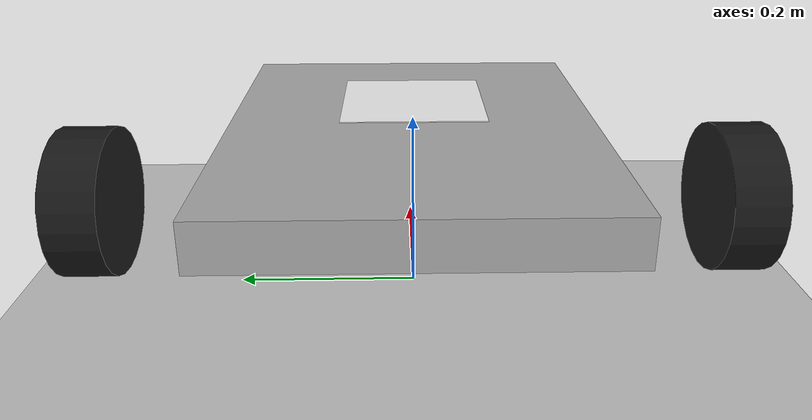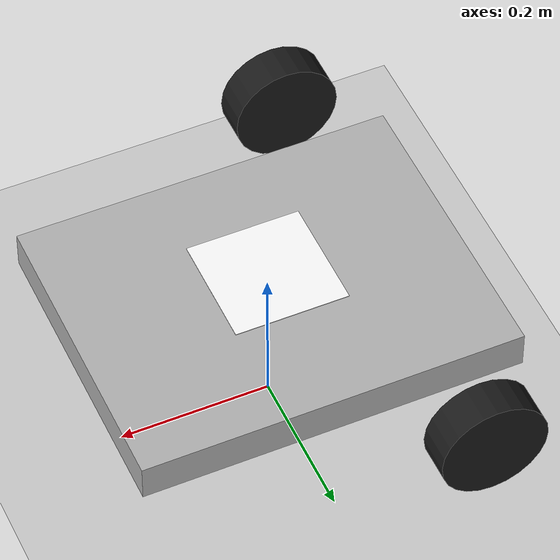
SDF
<?xml version="1.0" ?>
<sdf version="1.9">
  <world name="simple_robot_world">
    <physics name="1ms" type="ignored">
      <max_step_size>0.001</max_step_size>
      <real_time_factor>1.0</real_time_factor>
    </physics>

    <!-- Standard plugins -->
    <plugin filename="gz-sim-physics-system" name="gz::sim::systems::Physics"></plugin>
    <plugin filename="gz-sim-sensors-system" name="gz::sim::systems::Sensors">
      <render_engine>ogre2</render_engine>
    </plugin>
    <plugin filename="gz-sim-user-commands-system" name="gz::sim::systems::UserCommands"></plugin>
    <plugin filename="gz-sim-scene-broadcaster-system" name="gz::sim::systems::SceneBroadcaster"></plugin>

    <!-- Scene configuration -->
    <scene>
      <ambient>1.0 1.0 1.0</ambient>
      <background>0.8 0.8 0.8</background>
    </scene>

    <!-- Light -->
    <light type="directional" name="sun">
      <cast_shadows>true</cast_shadows>
      <pose>0 0 10 0 0 0</pose>
      <diffuse>0.8 0.8 0.8 1</diffuse>
      <specular>0.8 0.8 0.8 1</specular>
      <direction>-0.5 0.1 -0.9</direction>
    </light>

    <!-- Ground plane -->
    <model name="ground_plane">
      <static>true</static>
      <link name="link">
        <collision name="collision">
          <geometry>
            <plane>
              <normal>0 0 1</normal>
              <size>100 100</size>
            </plane>
          </geometry>
        </collision>
        <visual name="visual">
          <geometry>
            <plane>
              <normal>0 0 1</normal>
              <size>100 100</size>
            </plane>
          </geometry>
          <material>
            <ambient>0.8 0.8 0.8 1</ambient>
            <diffuse>0.8 0.8 0.8 1</diffuse>
            <specular>0.8 0.8 0.8 1</specular>
          </material>
        </visual>
      </link>
    </model>

    <!-- Include our robot with ArUco marker -->
    <include>
      <uri>model://simple_robot_with_aruco</uri>
      <name>robot_with_aruco</name>
      <pose>0 0 0.1 0 0 0</pose>
    </include>

    <!-- Keyboard controls for driving the robot -->
    <!-- Left arrow key -->
    <plugin filename="gz-sim-triggered-publisher-system"
            name="gz::sim::systems::TriggeredPublisher">
      <input type="gz.msgs.Int32" topic="/keyboard/keypress">
        <match field="data">16777234</match>
      </input>
      <output type="gz.msgs.Twist" topic="/cmd_vel">
        linear: {x: 0.0}, angular: {z: 0.5}
      </output>
    </plugin>

    <!-- Up arrow key (forward) -->
    <plugin filename="gz-sim-triggered-publisher-system"
            name="gz::sim::systems::TriggeredPublisher">
      <input type="gz.msgs.Int32" topic="/keyboard/keypress">
        <match field="data">16777235</match>
      </input>
      <output type="gz.msgs.Twist" topic="/cmd_vel">
        linear: {x: 0.5}, angular: {z: 0.0}
      </output>
    </plugin>

    <!-- Right arrow key -->
    <plugin filename="gz-sim-triggered-publisher-system"
            name="gz::sim::systems::TriggeredPublisher">
      <input type="gz.msgs.Int32" topic="/keyboard/keypress">
        <match field="data">16777236</match>
      </input>
      <output type="gz.msgs.Twist" topic="/cmd_vel">
        linear: {x: 0.0}, angular: {z: -0.5}
      </output>
    </plugin>

    <!-- Down arrow key (backward) -->
    <plugin filename="gz-sim-triggered-publisher-system"
            name="gz::sim::systems::TriggeredPublisher">
      <input type="gz.msgs.Int32" topic="/keyboard/keypress">
        <match field="data">16777237</match>
      </input>
      <output type="gz.msgs.Twist" topic="/cmd_vel">
        linear: {x: -0.5}, angular: {z: 0.0}
      </output>
    </plugin>
  </world>
</sdf>

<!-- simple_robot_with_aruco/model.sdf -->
<sdf version="1.9">
  <model name="simple_robot_with_aruco">
    <link name='chassis'>
      <pose>0 0 0.07 0 0 0</pose>  <!-- Lowered height -->
      <inertial>
        <mass>5.0</mass>  <!-- Increased mass for stability -->
        <inertia>
          <ixx>0.2</ixx>
          <ixy>0</ixy>
          <ixz>0</ixz>
          <iyy>0.25</iyy>
          <iyz>0</iyz>
          <izz>0.4</izz>
        </inertia>
      </inertial>
      <visual name='visual'>
        <geometry>
          <box>
            <size>0.5 0.4 0.05</size>  <!-- Thinner chassis -->
          </box>
        </geometry>
        <material>
          <ambient>0.7 0.7 0.7 1</ambient>
          <diffuse>0.7 0.7 0.7 1</diffuse>
          <specular>0.7 0.7 0.7 1</specular>
        </material>
      </visual>
      <collision name='collision'>
        <geometry>
          <box>
            <size>0.5 0.4 0.05</size>
          </box>
        </geometry>
      </collision>
    </link>

    <!-- Left wheel -->
    <link name='left_wheel'>
      <pose relative_to="chassis">-0.15 0.3 0 -1.5707 0 0</pose>  <!-- Wider wheelbase -->
      <inertial>
        <mass>1.0</mass>
        <inertia>
          <ixx>0.043333</ixx>
          <ixy>0</ixy>
          <ixz>0</ixz>
          <iyy>0.043333</iyy>
          <iyz>0</iyz>
          <izz>0.08</izz>
        </inertia>
      </inertial>
      <visual name='visual'>
        <geometry>
          <cylinder>
            <radius>0.07</radius>  <!-- Smaller wheels -->
            <length>0.05</length>
          </cylinder>
        </geometry>
        <material>
          <ambient>0.1 0.1 0.1 1</ambient>
          <diffuse>0.1 0.1 0.1 1</diffuse>
          <specular>0.1 0.1 0.1 1</specular>
        </material>
      </visual>
      <collision name='collision'>
        <geometry>
          <cylinder>
            <radius>0.07</radius>
            <length>0.05</length>
          </cylinder>
        </geometry>
      </collision>
    </link>

    <!-- Right wheel -->
    <link name='right_wheel'>
      <pose relative_to="chassis">-0.15 -0.3 0 -1.5707 0 0</pose>  <!-- Wider wheelbase -->
      <inertial>
        <mass>1.0</mass>
        <inertia>
          <ixx>0.043333</ixx>
          <ixy>0</ixy>
          <ixz>0</ixz>
          <iyy>0.043333</iyy>
          <iyz>0</iyz>
          <izz>0.08</izz>
        </inertia>
      </inertial>
      <visual name='visual'>
        <geometry>
          <cylinder>
            <radius>0.07</radius>
            <length>0.05</length>
          </cylinder>
        </geometry>
        <material>
          <ambient>0.1 0.1 0.1 1</ambient>
          <diffuse>0.1 0.1 0.1 1</diffuse>
          <specular>0.1 0.1 0.1 1</specular>
        </material>
      </visual>
      <collision name='collision'>
        <geometry>
          <cylinder>
            <radius>0.07</radius>
            <length>0.05</length>
          </cylinder>
        </geometry>
      </collision>
    </link>

    <!-- ArUco marker link -->
    <link name="aruco_marker_link">
      <pose relative_to="chassis">0 0 0.05 0 0 0</pose>
      <inertial>
        <mass>0.01</mass>
        <inertia>
          <ixx>0.000001</ixx>
          <ixy>0</ixy>
          <ixz>0</ixz>
          <iyy>0.000001</iyy>
          <iyz>0</iyz>
          <izz>0.000001</izz>
        </inertia>
      </inertial>
      <visual name="visual">
        <geometry>
          <box>
            <size>0.15 0.15 0.001</size>
          </box>
        </geometry>
        <material>
          <ambient>1.0 1.0 1.0 1</ambient>
          <diffuse>1.0 1.0 1.0 1</diffuse>
          <specular>0.5 0.5 0.5 1</specular>
          <pbr>
            <metal>
              <albedo_map>materials/textures/aruco_marker.png</albedo_map>
            </metal>
          </pbr>
        </material>
      </visual>
      <collision name="collision">
        <geometry>
          <box>
            <size>0.15 0.15 0.001</size>
          </box>
        </geometry>
      </collision>
    </link>

    <!-- Joints -->
    <joint name='left_wheel_joint' type='revolute'>
      <pose relative_to='left_wheel'/>
      <parent>chassis</parent>
      <child>left_wheel</child>
      <axis>
        <xyz>0 0 1</xyz>
        <limit>
          <lower>-1.79769e+308</lower>
          <upper>1.79769e+308</upper>
        </limit>
      </axis>
    </joint>

    <joint name='right_wheel_joint' type='revolute'>
      <pose relative_to='right_wheel'/>
      <parent>chassis</parent>
      <child>right_wheel</child>
      <axis>
        <xyz>0 0 1</xyz>
        <limit>
          <lower>-1.79769e+308</lower>
          <upper>1.79769e+308</upper>
        </limit>
      </axis>
    </joint>

    <!-- Fixed joint for ArUco marker -->
    <joint name="aruco_marker_joint" type="fixed">
      <parent>chassis</parent>
      <child>aruco_marker_link</child>
    </joint>

    <!-- Differential drive plugin -->
    <plugin
      filename="gz-sim-diff-drive-system"
      name="gz::sim::systems::DiffDrive">
      <left_joint>left_wheel_joint</left_joint>
      <right_joint>right_wheel_joint</right_joint>
      <wheel_separation>0.6</wheel_separation>
      <wheel_radius>0.07</wheel_radius>
      <odom_publish_frequency>10</odom_publish_frequency>
      <topic>cmd_vel</topic>
    </plugin>
  </model>
</sdf>
